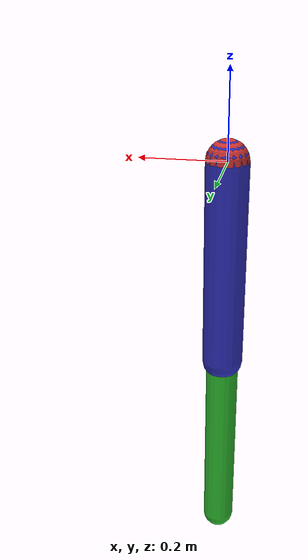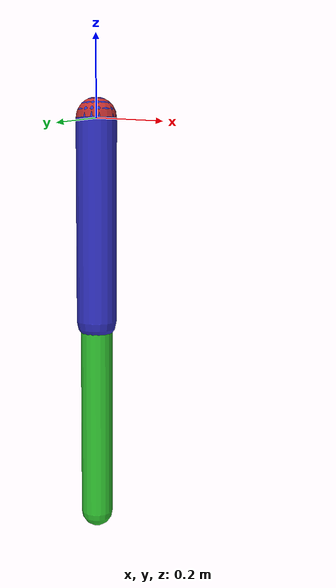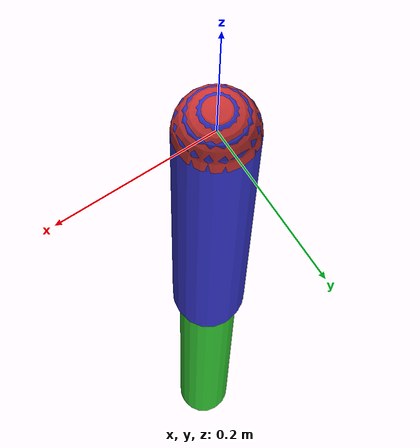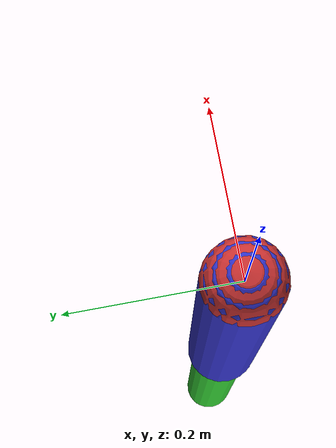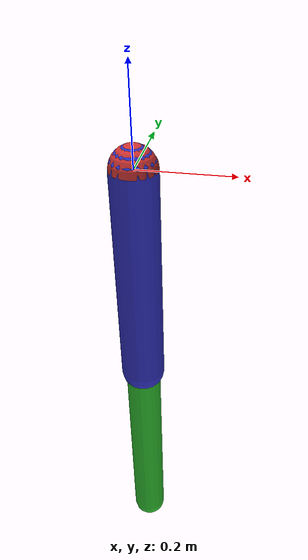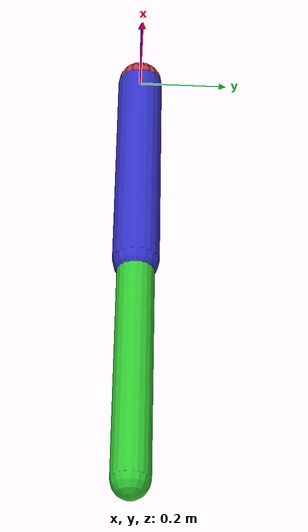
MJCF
<mujoco model="two_link_arm">
    <compiler angle="radian" coordinate="local"/>
    <option timestep="0.01" gravity="0 0 -9.81"/>

    <worldbody>
        <!-- Fixed base -->
        <body name="base" pos="0 0 0">
            <geom type="sphere" size="0.05" rgba="0.8 0.2 0.2 1"/>

            <!-- First link -->
            <body name="link1" pos="0 0 0">
                <geom type="capsule" fromto="0 0 0 0 0 -0.5" size="0.05" rgba="0.2 0.2 0.8 1"/>
                <joint name="joint1" type="hinge" axis="0 1 0" range="-3.14 3.14"/>

                <!-- Second link connected to first link -->
                <body name="link2" pos="0 0 -0.5">
                    <geom type="capsule" fromto="0 0 0 0 0 -0.5" size="0.04" rgba="0.2 0.8 0.2 1"/>
                    <joint name="joint2" type="hinge" axis="0 1 0" range="-3.14 3.14"/>
                </body>
            </body>
        </body>
    </worldbody>

    <actuator>
        <motor joint="joint1" ctrlrange="-1 1" gear="1"/>
        <motor joint="joint2" ctrlrange="-1 1" gear="1"/>
    </actuator>
</mujoco>
